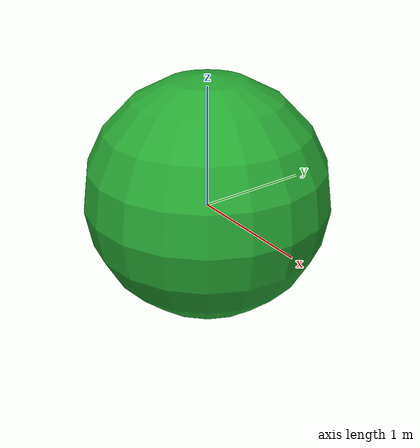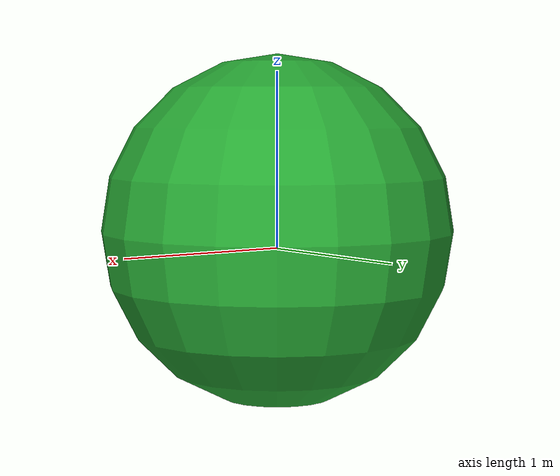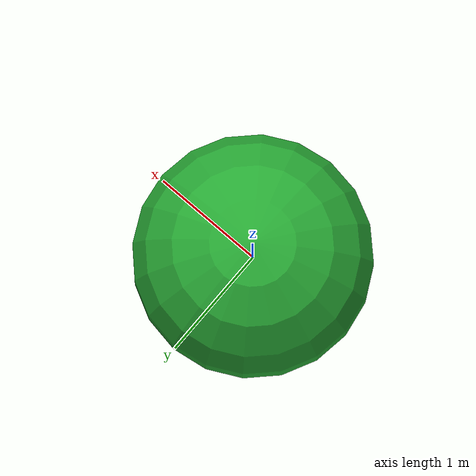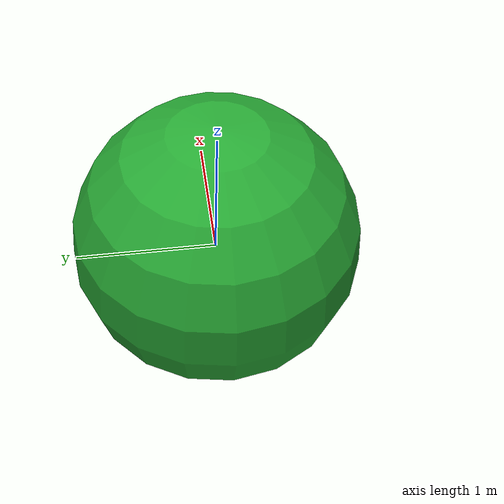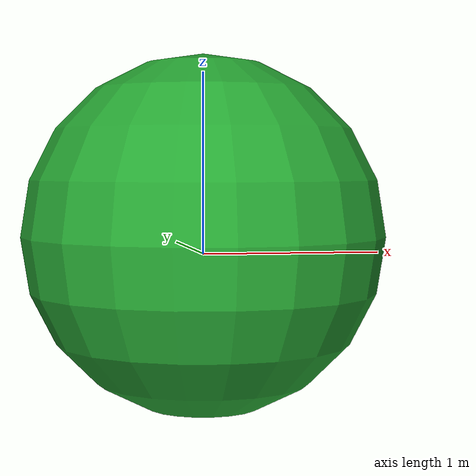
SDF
<?xml version="1.0" ?>
<sdf version="1.6">
  <model name="bush1">
    <static>true</static> <!-- Set to true if the model should not move -->
    <pose>0 0 0.1 0 0 0</pose>

    <link name="link">
      <collision name="bush1_collision">
        <geometry>
          <sphere>1</sphere>
        </geometry>
      </collision>
      <visual name="bush1_visual">
        <geometry>
          <sphere>1</sphere>
        </geometry>
        <material>
          <script>
            <uri>model://materials/scripts/green.material</uri>
            <name>GreenMaterial</name>
          </script>
        </material>
      </visual>
    </link>
  </model>
</sdf>
